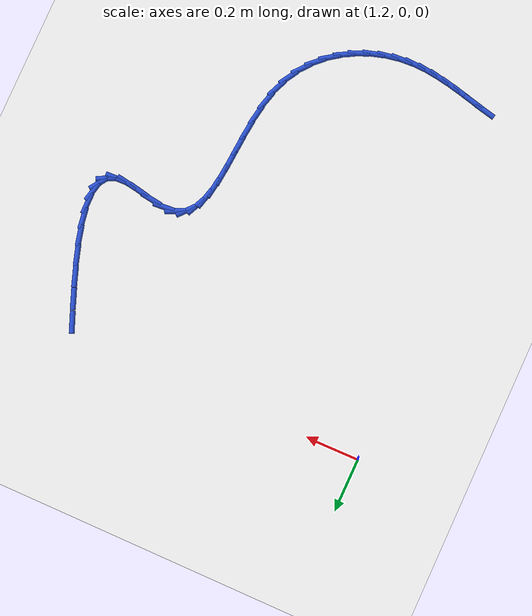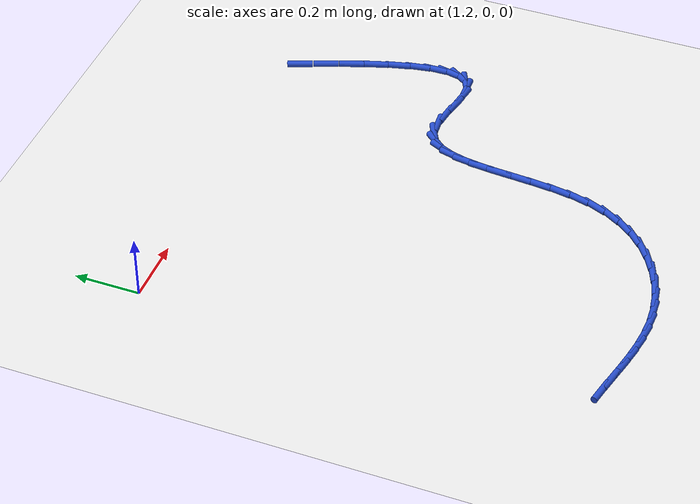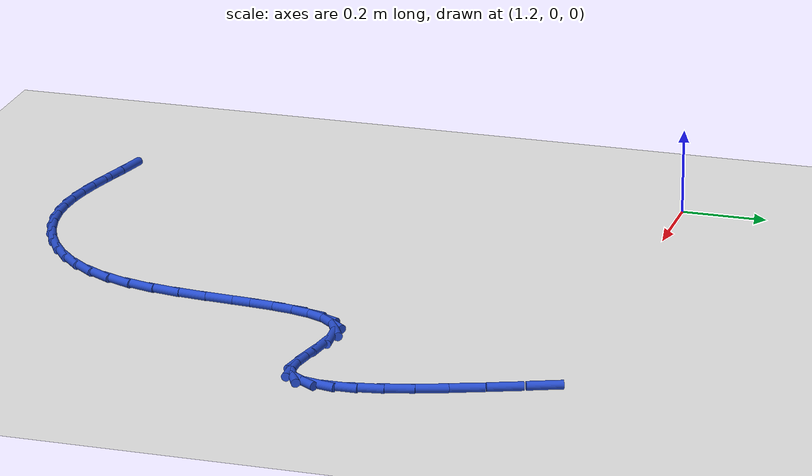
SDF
<sdf version="1.6">
 <world name="default">
  <model name="ground_plane">
   <static>1</static>
   <link name="link">
    <collision name="collision">
     <geometry><plane><normal>0 0 1</normal><size>100 100</size></plane></geometry>
     <surface><friction><ode><mu>100</mu><mu2>50</mu2></ode></friction></surface>
    </collision>
    <visual name="visual">
     <cast_shadows>0</cast_shadows>
     <geometry><plane><normal>0 0 1</normal><size>100 100</size></plane></geometry>
     <material>
      <script><uri>file://media/materials/scripts/gazebo.material</uri><name>Gazebo/WhiteGlow</name></script>
     </material>
    </visual>
   </link>
  </model>
  <model name="line">
   <link name="link_86">
    <pose>2.329975875788228 -0.03298837015630041 0.01 0 1.57 -1.1936350038603252</pose>
    <collision name="collision">
     <geometry><cylinder><radius>0.01</radius><length>0.08</length></cylinder></geometry>
    </collision>
    <visual name="visual">
     <material>
      <script><name>Gazebo/Blue</name><uri>file://media/materials/scripts/gazebo.material</uri></script>
     </material>
     <geometry><cylinder><radius>0.01</radius><length>0.08</length></cylinder></geometry>
    </visual>
   </link>
   <link name="link_87">
    <pose>2.3609360660655008 -0.11114601608752936 0.01 0 1.57 -1.210087739164891</pose>
    <collision name="collision">
     <geometry><cylinder><radius>0.01</radius><length>0.08</length></cylinder></geometry>
    </collision>
    <visual name="visual">
     <material>
      <script><name>Gazebo/Blue</name><uri>file://media/materials/scripts/gazebo.material</uri></script>
     </material>
     <geometry><cylinder><radius>0.01</radius><length>0.08</length></cylinder></geometry>
    </visual>
   </link>
   <link name="link_88">
    <pose>2.3896370568808245 -0.18723316924504735 0.01 0 1.57 -1.2359234012138243</pose>
    <collision name="collision">
     <geometry><cylinder><radius>0.01</radius><length>0.08</length></cylinder></geometry>
    </collision>
    <visual name="visual">
     <material>
      <script><name>Gazebo/Blue</name><uri>file://media/materials/scripts/gazebo.material</uri></script>
     </material>
     <geometry><cylinder><radius>0.01</radius><length>0.08</length></cylinder></geometry>
    </visual>
   </link>
   <link name="link_89">
    <pose>2.414957351163203 -0.2599971003501713 0.01 0 1.57 -1.2744801029397066</pose>
    <collision name="collision">
     <geometry><cylinder><radius>0.01</radius><length>0.08</length></cylinder></geometry>
    </collision>
    <visual name="visual">
     <material>
      <script><name>Gazebo/Blue</name><uri>file://media/materials/scripts/gazebo.material</uri></script>
     </material>
     <geometry><cylinder><radius>0.01</radius><length>0.08</length></cylinder></geometry>
    </visual>
   </link>
   <link name="link_90">
    <pose>2.435775451841641 -0.32818508012421505 0.01 0 1.57 -1.3317944263722794</pose>
    <collision name="collision">
     <geometry><cylinder><radius>0.01</radius><length>0.08</length></cylinder></geometry>
    </collision>
    <visual name="visual">
     <material>
      <script><name>Gazebo/Blue</name><uri>file://media/materials/scripts/gazebo.material</uri></script>
     </material>
     <geometry><cylinder><radius>0.01</radius><length>0.08</length></cylinder></geometry>
    </visual>
   </link>
   <link name="link_91">
    <pose>2.450969861845141 -0.3905443792884954 0.01 0 1.57 -1.4191203203108913</pose>
    <collision name="collision">
     <geometry><cylinder><radius>0.01</radius><length>0.08</length></cylinder></geometry>
    </collision>
    <visual name="visual">
     <material>
      <script><name>Gazebo/Blue</name><uri>file://media/materials/scripts/gazebo.material</uri></script>
     </material>
     <geometry><cylinder><radius>0.01</radius><length>0.08</length></cylinder></geometry>
    </visual>
   </link>
   <link name="link_92">
    <pose>2.4594190841027075 -0.44582226856432855 0.01 0 1.57 -1.558387698587088</pose>
    <collision name="collision">
     <geometry><cylinder><radius>0.01</radius><length>0.08</length></cylinder></geometry>
    </collision>
    <visual name="visual">
     <material>
      <script><name>Gazebo/Blue</name><uri>file://media/materials/scripts/gazebo.material</uri></script>
     </material>
     <geometry><cylinder><radius>0.01</radius><length>0.08</length></cylinder></geometry>
    </visual>
   </link>
   <link name="link_93">
    <pose>2.460001621543344 -0.4927660186730306 0.01 0 1.57 1.3494730668818262</pose>
    <collision name="collision">
     <geometry><cylinder><radius>0.01</radius><length>0.08</length></cylinder></geometry>
    </collision>
    <visual name="visual">
     <material>
      <script><name>Gazebo/Blue</name><uri>file://media/materials/scripts/gazebo.material</uri></script>
     </material>
     <geometry><cylinder><radius>0.01</radius><length>0.08</length></cylinder></geometry>
    </visual>
   </link>
   <link name="link_94">
    <pose>2.451595977096055 -0.5301229003359181 0.01 0 1.57 0.9612552075482939</pose>
    <collision name="collision">
     <geometry><cylinder><radius>0.01</radius><length>0.08</length></cylinder></geometry>
    </collision>
    <visual name="visual">
     <material>
      <script><name>Gazebo/Blue</name><uri>file://media/materials/scripts/gazebo.material</uri></script>
     </material>
     <geometry><cylinder><radius>0.01</radius><length>0.08</length></cylinder></geometry>
    </visual>
   </link>
   <link name="link_95">
    <pose>2.433080653689843 -0.5566401842743055 0.01 0 1.57 0.4515187346285411</pose>
    <collision name="collision">
     <geometry><cylinder><radius>0.01</radius><length>0.08</length></cylinder></geometry>
    </collision>
    <visual name="visual">
     <material>
      <script><name>Gazebo/Blue</name><uri>file://media/materials/scripts/gazebo.material</uri></script>
     </material>
     <geometry><cylinder><radius>0.01</radius><length>0.08</length></cylinder></geometry>
    </visual>
   </link>
   <link name="link_96">
    <pose>2.403334154253714 -0.5710651412095098 0.01 0 1.57 0.03258134605563192</pose>
    <collision name="collision">
     <geometry><cylinder><radius>0.01</radius><length>0.08</length></cylinder></geometry>
    </collision>
    <visual name="visual">
     <material>
      <script><name>Gazebo/Blue</name><uri>file://media/materials/scripts/gazebo.material</uri></script>
     </material>
     <geometry><cylinder><radius>0.01</radius><length>0.08</length></cylinder></geometry>
    </visual>
   </link>
   <link name="link_97">
    <pose>2.3614778585872913 -0.572429358422973 0.01 0 1.57 -0.16104470599386742</pose>
    <collision name="collision">
     <geometry><cylinder><radius>0.01</radius><length>0.08</length></cylinder></geometry>
    </collision>
    <visual name="visual">
     <material>
      <script><name>Gazebo/Blue</name><uri>file://media/materials/scripts/gazebo.material</uri></script>
     </material>
     <geometry><cylinder><radius>0.01</radius><length>0.08</length></cylinder></geometry>
    </visual>
   </link>
   <link name="link_98">
    <pose>2.310358045713449 -0.564124865305195 0.01 0 1.57 -0.2017016225229833</pose>
    <collision name="collision">
     <geometry><cylinder><radius>0.01</radius><length>0.08</length></cylinder></geometry>
    </collision>
    <visual name="visual">
     <material>
      <script><name>Gazebo/Blue</name><uri>file://media/materials/scripts/gazebo.material</uri></script>
     </material>
     <geometry><cylinder><radius>0.01</radius><length>0.08</length></cylinder></geometry>
    </visual>
   </link>
   <link name="link_99">
    <pose>2.2557355594351978 -0.5529555395236839 0.01 0 1.57 -0.13570200149633832</pose>
    <collision name="collision">
     <geometry><cylinder><radius>0.01</radius><length>0.08</length></cylinder></geometry>
    </collision>
    <visual name="visual">
     <material>
      <script><name>Gazebo/Blue</name><uri>file://media/materials/scripts/gazebo.material</uri></script>
     </material>
     <geometry><cylinder><radius>0.01</radius><length>0.08</length></cylinder></geometry>
    </visual>
   </link>
   <link name="link_100">
    <pose>2.20344898991319 -0.545816270199244 0.01 0 1.57 0.08147625548266185</pose>
    <collision name="collision">
     <geometry><cylinder><radius>0.01</radius><length>0.08</length></cylinder></geometry>
    </collision>
    <visual name="visual">
     <material>
      <script><name>Gazebo/Blue</name><uri>file://media/materials/scripts/gazebo.material</uri></script>
     </material>
     <geometry><cylinder><radius>0.01</radius><length>0.08</length></cylinder></geometry>
    </visual>
   </link>
   <link name="link_101">
    <pose>2.159189379211113 -0.5494303783645761 0.01 0 1.57 0.4631856962183469</pose>
    <collision name="collision">
     <geometry><cylinder><radius>0.01</radius><length>0.08</length></cylinder></geometry>
    </collision>
    <visual name="visual">
     <material>
      <script><name>Gazebo/Blue</name><uri>file://media/materials/scripts/gazebo.material</uri></script>
     </material>
     <geometry><cylinder><radius>0.01</radius><length>0.08</length></cylinder></geometry>
    </visual>
   </link>
   <link name="link_102">
    <pose>2.1251358139967502 -0.5664375032891009 0.01 0 1.57 0.852377505354001</pose>
    <collision name="collision">
     <geometry><cylinder><radius>0.01</radius><length>0.08</length></cylinder></geometry>
    </collision>
    <visual name="visual">
     <material>
      <script><name>Gazebo/Blue</name><uri>file://media/materials/scripts/gazebo.material</uri></script>
     </material>
     <geometry><cylinder><radius>0.01</radius><length>0.08</length></cylinder></geometry>
    </visual>
   </link>
   <link name="link_103">
    <pose>2.099888389896904 -0.5953156538120642 0.01 0 1.57 1.1387334216762603</pose>
    <collision name="collision">
     <geometry><cylinder><radius>0.01</radius><length>0.08</length></cylinder></geometry>
    </collision>
    <visual name="visual">
     <material>
      <script><name>Gazebo/Blue</name><uri>file://media/materials/scripts/gazebo.material</uri></script>
     </material>
     <geometry><cylinder><radius>0.01</radius><length>0.08</length></cylinder></geometry>
    </visual>
   </link>
   <link name="link_104">
    <pose>2.0818862458098004 -0.6343556792040228 0.01 0 1.57 1.3170277254615903</pose>
    <collision name="collision">
     <geometry><cylinder><radius>0.01</radius><length>0.08</length></cylinder></geometry>
    </collision>
    <visual name="visual">
     <material>
      <script><name>Gazebo/Blue</name><uri>file://media/materials/scripts/gazebo.material</uri></script>
     </material>
     <geometry><cylinder><radius>0.01</radius><length>0.08</length></cylinder></geometry>
    </visual>
   </link>
   <link name="link_105">
    <pose>2.0695685206336663 -0.6818484287355313 0.01 0 1.57 1.420847721844174</pose>
    <collision name="collision">
     <geometry><cylinder><radius>0.01</radius><length>0.08</length></cylinder></geometry>
    </collision>
    <visual name="visual">
     <material>
      <script><name>Gazebo/Blue</name><uri>file://media/materials/scripts/gazebo.material</uri></script>
     </material>
     <geometry><cylinder><radius>0.01</radius><length>0.08</length></cylinder></geometry>
    </visual>
   </link>
   <link name="link_106">
    <pose>2.0613743532667286 -0.736084751677146 0.01 0 1.57 1.476068043122643</pose>
    <collision name="collision">
     <geometry><cylinder><radius>0.01</radius><length>0.08</length></cylinder></geometry>
    </collision>
    <visual name="visual">
     <material>
      <script><name>Gazebo/Blue</name><uri>file://media/materials/scripts/gazebo.material</uri></script>
     </material>
     <geometry><cylinder><radius>0.01</radius><length>0.08</length></cylinder></geometry>
    </visual>
   </link>
   <link name="link_107">
    <pose>2.0557428826072144 -0.7953554972994241 0.01 0 1.57 1.496970207896974</pose>
    <collision name="collision">
     <geometry><cylinder><radius>0.01</radius><length>0.08</length></cylinder></geometry>
    </collision>
    <visual name="visual">
     <material>
      <script><name>Gazebo/Blue</name><uri>file://media/materials/scripts/gazebo.material</uri></script>
     </material>
     <geometry><cylinder><radius>0.01</radius><length>0.08</length></cylinder></geometry>
    </visual>
   </link>
   <link name="link_108">
    <pose>2.05111324755335 -0.8579515148729207 0.01 0 1.57 1.4901665321780844</pose>
    <collision name="collision">
     <geometry><cylinder><radius>0.01</radius><length>0.08</length></cylinder></geometry>
    </collision>
    <visual name="visual">
     <material>
      <script><name>Gazebo/Blue</name><uri>file://media/materials/scripts/gazebo.material</uri></script>
     </material>
     <geometry><cylinder><radius>0.01</radius><length>0.08</length></cylinder></geometry>
    </visual>
   </link>
   <link name="link_109">
    <pose>2.045924587003363 -0.9221636536681925 0.01 0 1.57 1.457302237332466</pose>
    <collision name="collision">
     <geometry><cylinder><radius>0.01</radius><length>0.08</length></cylinder></geometry>
    </collision>
    <visual name="visual">
     <material>
      <script><name>Gazebo/Blue</name><uri>file://media/materials/scripts/gazebo.material</uri></script>
     </material>
     <geometry><cylinder><radius>0.01</radius><length>0.08</length></cylinder></geometry>
    </visual>
   </link>
   <link name="link_110">
    <pose>2.038616039855479 -0.9862827629557962 0.01 0 1.57 1.396245676788558</pose>
    <collision name="collision">
     <geometry><cylinder><radius>0.01</radius><length>0.08</length></cylinder></geometry>
    </collision>
    <visual name="visual">
     <material>
      <script><name>Gazebo/Blue</name><uri>file://media/materials/scripts/gazebo.material</uri></script>
     </material>
     <geometry><cylinder><radius>0.01</radius><length>0.08</length></cylinder></geometry>
    </visual>
   </link>
   <link name="link_111">
    <pose>2.027626745007927 -1.048599692006286 0.01 0 1.57 1.301491835406188</pose>
    <collision name="collision">
     <geometry><cylinder><radius>0.01</radius><length>0.08</length></cylinder></geometry>
    </collision>
    <visual name="visual">
     <material>
      <script><name>Gazebo/Blue</name><uri>file://media/materials/scripts/gazebo.material</uri></script>
     </material>
     <geometry><cylinder><radius>0.01</radius><length>0.08</length></cylinder></geometry>
    </visual>
   </link>
   <link name="link_112">
    <pose>2.011395841358932 -1.1074052900902194 0.01 0 1.57 1.168344797253381</pose>
    <collision name="collision">
     <geometry><cylinder><radius>0.01</radius><length>0.08</length></cylinder></geometry>
    </collision>
    <visual name="visual">
     <material>
      <script><name>Gazebo/Blue</name><uri>file://media/materials/scripts/gazebo.material</uri></script>
     </material>
     <geometry><cylinder><radius>0.01</radius><length>0.08</length></cylinder></geometry>
    </visual>
   </link>
   <link name="link_113">
    <pose>1.9885339986485766 -1.1611111769204756 0.01 0 1.57 1.0219003645880327</pose>
    <collision name="collision">
     <geometry><cylinder><radius>0.01</radius><length>0.08</length></cylinder></geometry>
    </collision>
    <visual name="visual">
     <material>
      <script><name>Gazebo/Blue</name><uri>file://media/materials/scripts/gazebo.material</uri></script>
     </material>
     <geometry><cylinder><radius>0.01</radius><length>0.08</length></cylinder></geometry>
    </visual>
   </link>
   <link name="link_114">
    <pose>1.9591384141489 -1.2091755979107108 0.01 0 1.57 0.8799530599385964</pose>
    <collision name="collision">
     <geometry><cylinder><radius>0.01</radius><length>0.08</length></cylinder></geometry>
    </collision>
    <visual name="visual">
     <material>
      <script><name>Gazebo/Blue</name><uri>file://media/materials/scripts/gazebo.material</uri></script>
     </material>
     <geometry><cylinder><radius>0.01</radius><length>0.08</length></cylinder></geometry>
    </visual>
   </link>
   <link name="link_115">
    <pose>1.924068973284617 -1.2515937875347285 0.01 0 1.57 0.7449028266580465</pose>
    <collision name="collision">
     <geometry><cylinder><radius>0.01</radius><length>0.08</length></cylinder></geometry>
    </collision>
    <visual name="visual">
     <material>
      <script><name>Gazebo/Blue</name><uri>file://media/materials/scripts/gazebo.material</uri></script>
     </material>
     <geometry><cylinder><radius>0.01</radius><length>0.08</length></cylinder></geometry>
    </visual>
   </link>
   <link name="link_116">
    <pose>1.8841917841028424 -1.2883653614542914 0.01 0 1.57 0.6176062180739855</pose>
    <collision name="collision">
     <geometry><cylinder><radius>0.01</radius><length>0.08</length></cylinder></geometry>
    </collision>
    <visual name="visual">
     <material>
      <script><name>Gazebo/Blue</name><uri>file://media/materials/scripts/gazebo.material</uri></script>
     </material>
     <geometry><cylinder><radius>0.01</radius><length>0.08</length></cylinder></geometry>
    </visual>
   </link>
   <link name="link_117">
    <pose>1.8403729546506875 -1.3194899353311638 0.01 0 1.57 0.4976761927513409</pose>
    <collision name="collision">
     <geometry><cylinder><radius>0.01</radius><length>0.08</length></cylinder></geometry>
    </collision>
    <visual name="visual">
     <material>
      <script><name>Gazebo/Blue</name><uri>file://media/materials/scripts/gazebo.material</uri></script>
     </material>
     <geometry><cylinder><radius>0.01</radius><length>0.08</length></cylinder></geometry>
    </visual>
   </link>
   <link name="link_118">
    <pose>1.7934785929752646 -1.3449671248271093 0.01 0 1.57 0.3838009143368715</pose>
    <collision name="collision">
     <geometry><cylinder><radius>0.01</radius><length>0.08</length></cylinder></geometry>
    </collision>
    <visual name="visual">
     <material>
      <script><name>Gazebo/Blue</name><uri>file://media/materials/scripts/gazebo.material</uri></script>
     </material>
     <geometry><cylinder><radius>0.01</radius><length>0.08</length></cylinder></geometry>
    </visual>
   </link>
   <link name="link_119">
    <pose>1.7443748071236875 -1.3647965456038926 0.01 0 1.57 0.274039231448352</pose>
    <collision name="collision">
     <geometry><cylinder><radius>0.01</radius><length>0.08</length></cylinder></geometry>
    </collision>
    <visual name="visual">
     <material>
      <script><name>Gazebo/Blue</name><uri>file://media/materials/scripts/gazebo.material</uri></script>
     </material>
     <geometry><cylinder><radius>0.01</radius><length>0.08</length></cylinder></geometry>
    </visual>
   </link>
   <link name="link_120">
    <pose>1.6939277051430681 -1.3789778133232764 0.01 0 1.57 0.16601493133944</pose>
    <collision name="collision">
     <geometry><cylinder><radius>0.01</radius><length>0.08</length></cylinder></geometry>
    </collision>
    <visual name="visual">
     <material>
      <script><name>Gazebo/Blue</name><uri>file://media/materials/scripts/gazebo.material</uri></script>
     </material>
     <geometry><cylinder><radius>0.01</radius><length>0.08</length></cylinder></geometry>
    </visual>
   </link>
   <link name="link_121">
    <pose>1.643003395080518 -1.3875105436470259 0.01 0 1.57 0.05780334549569558</pose>
    <collision name="collision">
     <geometry><cylinder><radius>0.01</radius><length>0.08</length></cylinder></geometry>
    </collision>
    <visual name="visual">
     <material>
      <script><name>Gazebo/Blue</name><uri>file://media/materials/scripts/gazebo.material</uri></script>
     </material>
     <geometry><cylinder><radius>0.01</radius><length>0.08</length></cylinder></geometry>
    </visual>
   </link>
   <link name="link_122">
    <pose>1.5924216885892057 -1.3904375962116018 0.01 0 1.57 -0.041542558406590185</pose>
    <collision name="collision">
     <geometry><cylinder><radius>0.01</radius><length>0.08</length></cylinder></geometry>
    </collision>
    <visual name="visual">
     <material>
      <script><name>Gazebo/Blue</name><uri>file://media/materials/scripts/gazebo.material</uri></script>
     </material>
     <geometry><cylinder><radius>0.01</radius><length>0.08</length></cylinder></geometry>
    </visual>
   </link>
   <link name="link_123">
    <pose>1.542406292920057 -1.3883586326306967 0.01 0 1.57 -0.12224587214847836</pose>
    <collision name="collision">
     <geometry><cylinder><radius>0.01</radius><length>0.08</length></cylinder></geometry>
    </collision>
    <visual name="visual">
     <material>
      <script><name>Gazebo/Blue</name><uri>file://media/materials/scripts/gazebo.material</uri></script>
     </material>
     <geometry><cylinder><radius>0.01</radius><length>0.08</length></cylinder></geometry>
    </visual>
   </link>
   <link name="link_124">
    <pose>1.492766919740666 -1.3822600144962223 0.01 0 1.57 -0.18241648208774755</pose>
    <collision name="collision">
     <geometry><cylinder><radius>0.01</radius><length>0.08</length></cylinder></geometry>
    </collision>
    <visual name="visual">
     <material>
      <script><name>Gazebo/Blue</name><uri>file://media/materials/scripts/gazebo.material</uri></script>
     </material>
     <geometry><cylinder><radius>0.01</radius><length>0.08</length></cylinder></geometry>
    </visual>
   </link>
   <link name="link_125">
    <pose>1.4433049303425 -1.3731359032182466 0.01 0 1.57 -0.221732055208342</pose>
    <collision name="collision">
     <geometry><cylinder><radius>0.01</radius><length>0.08</length></cylinder></geometry>
    </collision>
    <visual name="visual">
     <material>
      <script><name>Gazebo/Blue</name><uri>file://media/materials/scripts/gazebo.material</uri></script>
     </material>
     <geometry><cylinder><radius>0.01</radius><length>0.08</length></cylinder></geometry>
    </visual>
   </link>
   <link name="link_126">
    <pose>1.3938216860170245 -1.3619804602068353 0.01 0 1.57 -0.2405584938520159</pose>
    <collision name="collision">
     <geometry><cylinder><radius>0.01</radius><length>0.08</length></cylinder></geometry>
    </collision>
    <visual name="visual">
     <material>
      <script><name>Gazebo/Blue</name><uri>file://media/materials/scripts/gazebo.material</uri></script>
     </material>
     <geometry><cylinder><radius>0.01</radius><length>0.08</length></cylinder></geometry>
    </visual>
   </link>
   <link name="link_127">
    <pose>1.3441185480557085 -1.349787846872057 0.01 0 1.57 -0.23943543039399204</pose>
    <collision name="collision">
     <geometry><cylinder><radius>0.01</radius><length>0.08</length></cylinder></geometry>
    </collision>
    <visual name="visual">
     <material>
      <script><name>Gazebo/Blue</name><uri>file://media/materials/scripts/gazebo.material</uri></script>
     </material>
     <geometry><cylinder><radius>0.01</radius><length>0.08</length></cylinder></geometry>
    </visual>
   </link>
   <link name="link_128">
    <pose>1.2939968777500175 -1.3375522246239775 0.01 0 1.57 -0.21884119515434433</pose>
    <collision name="collision">
     <geometry><cylinder><radius>0.01</radius><length>0.08</length></cylinder></geometry>
    </collision>
    <visual name="visual">
     <material>
      <script><name>Gazebo/Blue</name><uri>file://media/materials/scripts/gazebo.material</uri></script>
     </material>
     <geometry><cylinder><radius>0.01</radius><length>0.08</length></cylinder></geometry>
    </visual>
   </link>
  </model>
 </world>
</sdf>
